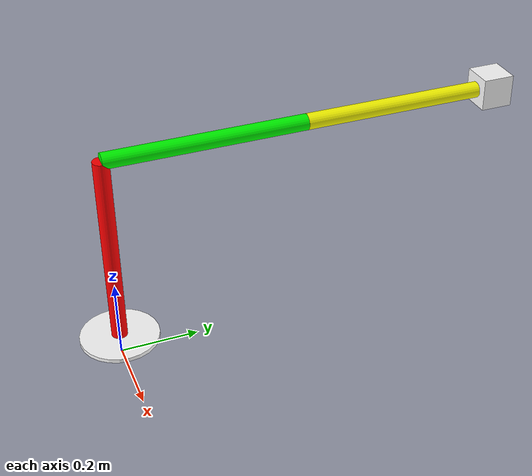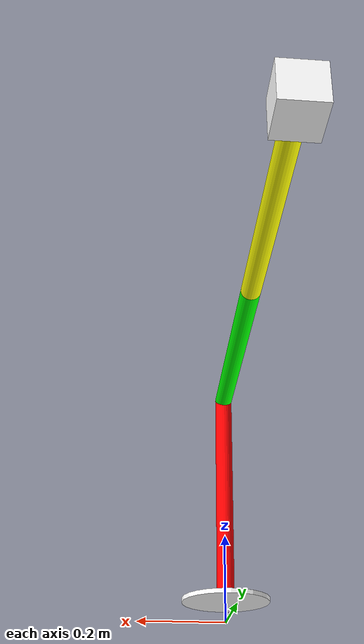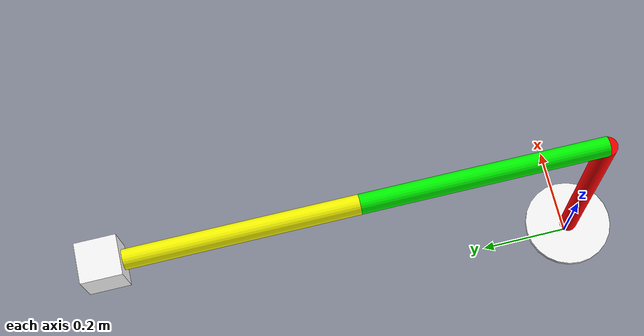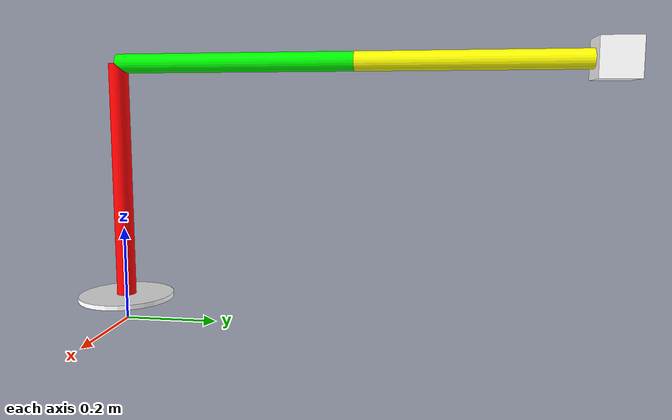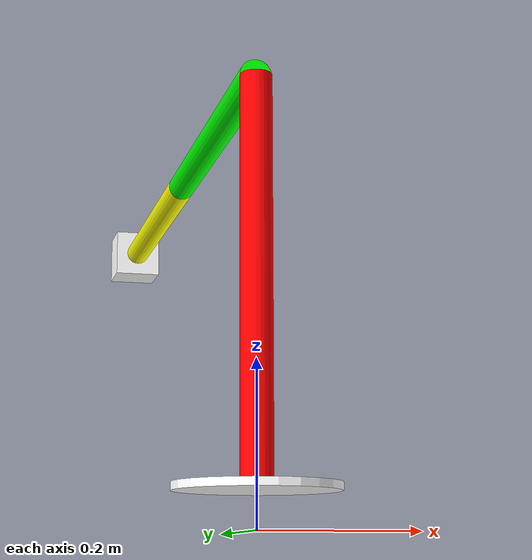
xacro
<?xml version="1.0"?>
<robot name="p1" xmlns:xacro="http://ros.org/wiki/xacro">

    <xacro:property name="pi" value="3.1415"/>

    <link name="dummy"></link>

    <!--I want to add a base link-->
    <link name="base_link">
        <visual>
            <geometry>
                <cylinder radius="0.10" length="0.01"/>
            </geometry>
            <material name="blue">
                <color rgba=" 1 1 1 1"/>
            </material>

        </visual>
        <collision>
            <geometry>
               <cylinder radius="0.10" length="0.01"/>
            </geometry>
        </collision>
    </link>

    <link name="link1">
        <visual>
            <geometry>
                <cylinder radius="0.02" length="0.5"/>
            </geometry>
            <material name="red">
                <color rgba="1 0 0 1"/>
            </material>
        </visual>
        <collision>
            <geometry>
                <cylinder radius="0.02" length="0.5"/>
            </geometry>
        </collision>
    </link>

    <link name="link2">

        <visual>
            <origin xyz="0 0.25 0.0" rpy="${pi/2} 0 0 "/>
            <geometry>
                <cylinder radius="0.02" length="0.5"/>
            </geometry>
            <material name="green">
                <color rgba="0 1 0 1"/>
            </material>
        </visual>
        <collision>
            <origin xyz="0 0.25 0.0" rpy="${pi/2} 0 0.0"/>
            <geometry>
                <cylinder radius="0.02" length="0.5"/>
            </geometry>
        </collision>
    </link>

    <link name="link3">
        <visual>
            <origin xyz="0 0.25 0" rpy="${pi/2} 0 0"/>
            <geometry>
                <cylinder radius="0.02" length="0.5"/>
            </geometry>
            <material name="blue">
                <color rgba="1 1 0 1"/>
            </material>
        </visual>
        <collision>
            <origin xyz="0 0.25 0" rpy="${pi/2} 0 0"/>
            <geometry>
                <cylinder radius="0.02" length="0.5"/>
            </geometry>
        </collision>
    </link>

    <link name="link4">
        <visual>
            <geometry>
                <box size="0.08 0.08 0.08"/>
            </geometry>
            <material name="black">
                <color rgba=" 1 1 1 1"/>
            </material>
        </visual>
        <collision>
            <geometry>
                <box size="0.08 0.08 0.08"/>
            </geometry>
        </collision>
    </link>

    <joint name="dummy_link" type="fixed">
        <origin xyz="0 0 0.05" rpy="0 0 0" />
        <parent link="dummy"/>
        <child link="base_link"/>
    </joint>

    <joint name="joint1" type="prismatic">
        <origin xyz="0 0 0.25" rpy="0 0 0"/>
        <parent link="base_link"/>
        <child link="link1"/>
        <axis xyz="0 0 1"/>
        <limit lower="0" upper="0.25" effort="10" velocity="1"/>
        <dh d="0.0" theta="0.0" a="0.0" alpha="0.0"/>
    </joint>

    <joint name="joint2" type="revolute">
        <origin xyz="0 0.0 0.25" rpy="0 0 0"/>
        <parent link="link1"/>
        <child link="link2"/>
        <axis xyz="0 0 1"/>
        <limit lower="${-pi/2}" upper="${pi/2}" effort="10" velocity="1"/>
        <dh d="0.0" theta="0.0" a="0.0" alpha="0.0"/>
    </joint>

    <joint name="joint3" type="revolute">
        <origin xyz="0 0.5 0." rpy="0 ${-pi/2} 0"/>
        <parent link="link2"/>
        <child link="link3"/>
        <axis xyz="0 0 1"/>
        <limit lower="0" upper="${pi}" effort="10" velocity="1"/>
        <dh d="0.0" theta="0.0" a="0.0" alpha="0.0"/>
    </joint>

    <joint name="joint4" type="revolute">
        <origin xyz="0 0.5 0" rpy="${-pi/2} 0 0"/>
        <parent link="link3"/>
        <child link="link4"/>
        <axis xyz="0 0 1"/>
        <limit lower="${-pi/2}" upper="${pi/2}" effort="10" velocity="1"/>
        <dh d="0.0" theta="0.0" a="0.0" alpha="0.0"/>
    </joint>

</robot>
